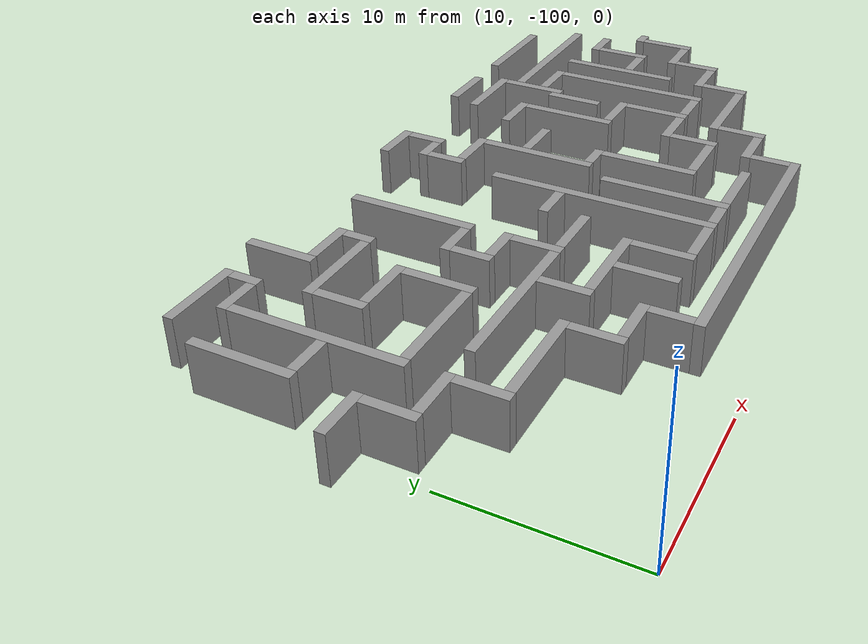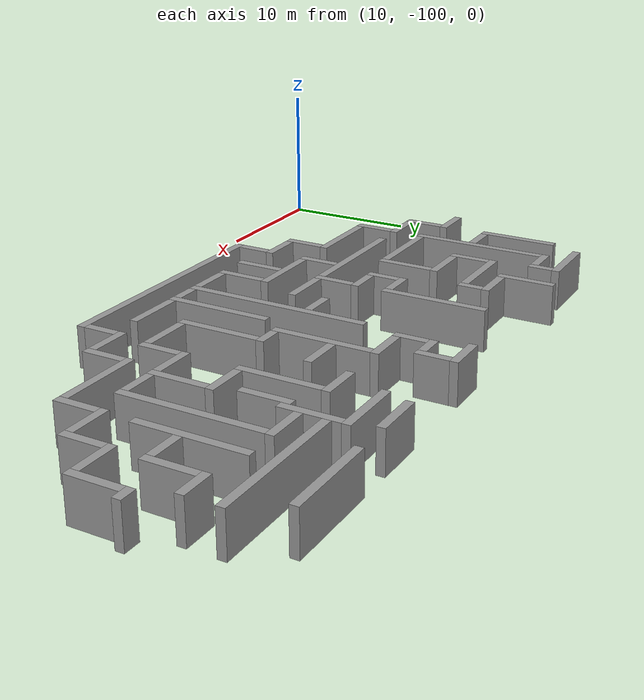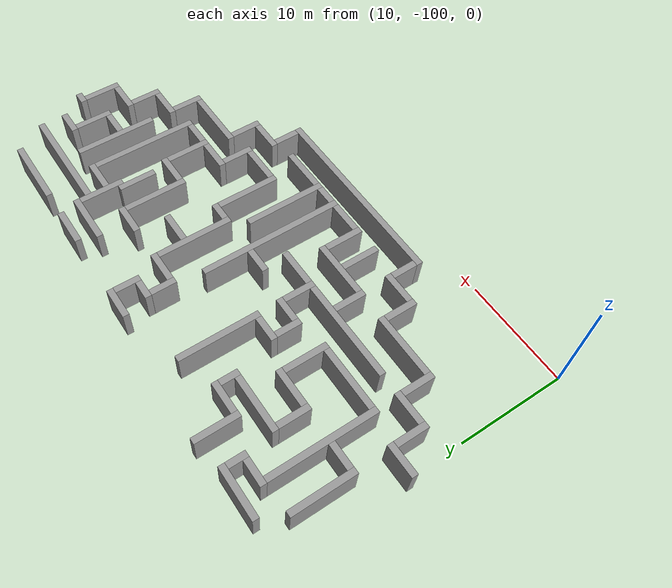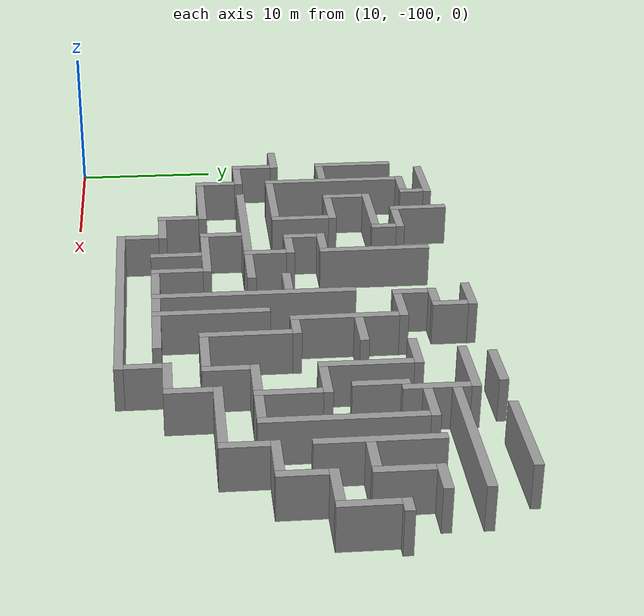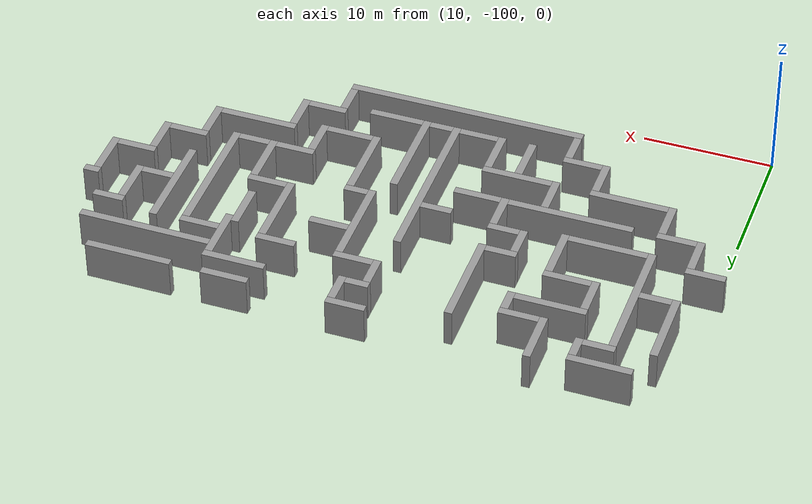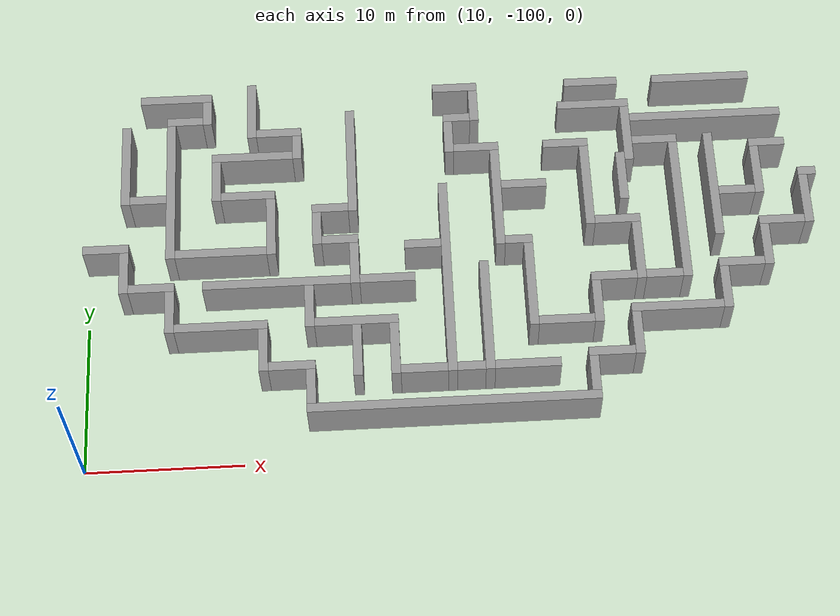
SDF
<sdf version="1.4">
 <model name="ButterflyWorld">
  <static>1</static>
  <link name="Wall_240">
   <collision name="Wall_240_Collision">
    <geometry><box><size>0.60000 4.20000 3.00000</size></box></geometry>
    <pose>20.70000 -74.70000 0 0 0 0.00000</pose>
   </collision>
   <visual name="Wall_240_Visual">
    <geometry><box><size>0.60000 4.20000 3.00000</size></box></geometry>
    <material>
     <script><uri>file://media/materials/scripts/gazebo.material</uri><name>Gazebo/Grey</name></script>
    </material>
    <pose>20.70000 -74.70000 0 0 0 0.00000</pose>
   </visual>
  </link>
  <link name="Wall_241">
   <collision name="Wall_241_Collision">
    <geometry><box><size>4.80000 0.60000 3.00000</size></box></geometry>
    <pose>15.60000 -73.50000 0 0 0 0.00000</pose>
   </collision>
   <visual name="Wall_241_Visual">
    <geometry><box><size>4.80000 0.60000 3.00000</size></box></geometry>
    <material>
     <script><uri>file://media/materials/scripts/gazebo.material</uri><name>Gazebo/Grey</name></script>
    </material>
    <pose>15.60000 -73.50000 0 0 0 0.00000</pose>
   </visual>
  </link>
  <link name="Wall_242">
   <collision name="Wall_242_Collision">
    <geometry><box><size>3.00000 0.60000 3.00000</size></box></geometry>
    <pose>34.50000 -73.50000 0 0 0 0.00000</pose>
   </collision>
   <visual name="Wall_242_Visual">
    <geometry><box><size>3.00000 0.60000 3.00000</size></box></geometry>
    <material>
     <script><uri>file://media/materials/scripts/gazebo.material</uri><name>Gazebo/Grey</name></script>
    </material>
    <pose>34.50000 -73.50000 0 0 0 0.00000</pose>
   </visual>
  </link>
  <link name="Wall_243">
   <collision name="Wall_243_Collision">
    <geometry><box><size>3.60000 0.60000 3.00000</size></box></geometry>
    <pose>43.80000 -73.50000 0 0 0 0.00000</pose>
   </collision>
   <visual name="Wall_243_Visual">
    <geometry><box><size>3.60000 0.60000 3.00000</size></box></geometry>
    <material>
     <script><uri>file://media/materials/scripts/gazebo.material</uri><name>Gazebo/Grey</name></script>
    </material>
    <pose>43.80000 -73.50000 0 0 0 0.00000</pose>
   </visual>
  </link>
  <link name="Wall_244">
   <collision name="Wall_244_Collision">
    <geometry><box><size>6.60000 0.60000 3.00000</size></box></geometry>
    <pose>51.30000 -73.50000 0 0 0 0.00000</pose>
   </collision>
   <visual name="Wall_244_Visual">
    <geometry><box><size>6.60000 0.60000 3.00000</size></box></geometry>
    <material>
     <script><uri>file://media/materials/scripts/gazebo.material</uri><name>Gazebo/Grey</name></script>
    </material>
    <pose>51.30000 -73.50000 0 0 0 0.00000</pose>
   </visual>
  </link>
  <link name="Wall_245">
   <collision name="Wall_245_Collision">
    <geometry><box><size>0.60000 1.80000 3.00000</size></box></geometry>
    <pose>17.70000 -74.70000 0 0 0 0.00000</pose>
   </collision>
   <visual name="Wall_245_Visual">
    <geometry><box><size>0.60000 1.80000 3.00000</size></box></geometry>
    <material>
     <script><uri>file://media/materials/scripts/gazebo.material</uri><name>Gazebo/Grey</name></script>
    </material>
    <pose>17.70000 -74.70000 0 0 0 0.00000</pose>
   </visual>
  </link>
  <link name="Wall_246">
   <collision name="Wall_246_Collision">
    <geometry><box><size>0.60000 2.40000 3.00000</size></box></geometry>
    <pose>35.70000 -75.00000 0 0 0 0.00000</pose>
   </collision>
   <visual name="Wall_246_Visual">
    <geometry><box><size>0.60000 2.40000 3.00000</size></box></geometry>
    <material>
     <script><uri>file://media/materials/scripts/gazebo.material</uri><name>Gazebo/Grey</name></script>
    </material>
    <pose>35.70000 -75.00000 0 0 0 0.00000</pose>
   </visual>
  </link>
  <link name="Wall_247">
   <collision name="Wall_247_Collision">
    <geometry><box><size>2.40000 0.60000 3.00000</size></box></geometry>
    <pose>16.20000 -75.30000 0 0 0 0.00000</pose>
   </collision>
   <visual name="Wall_247_Visual">
    <geometry><box><size>2.40000 0.60000 3.00000</size></box></geometry>
    <material>
     <script><uri>file://media/materials/scripts/gazebo.material</uri><name>Gazebo/Grey</name></script>
    </material>
    <pose>16.20000 -75.30000 0 0 0 0.00000</pose>
   </visual>
  </link>
  <link name="Wall_248">
   <collision name="Wall_248_Collision">
    <geometry><box><size>0.60000 7.80000 3.00000</size></box></geometry>
    <pose>27.30000 -78.90000 0 0 0 0.00000</pose>
   </collision>
   <visual name="Wall_248_Visual">
    <geometry><box><size>0.60000 7.80000 3.00000</size></box></geometry>
    <material>
     <script><uri>file://media/materials/scripts/gazebo.material</uri><name>Gazebo/Grey</name></script>
    </material>
    <pose>27.30000 -78.90000 0 0 0 0.00000</pose>
   </visual>
  </link>
  <link name="Wall_249">
   <collision name="Wall_249_Collision">
    <geometry><box><size>4.80000 0.60000 3.00000</size></box></geometry>
    <pose>43.80000 -75.30000 0 0 0 0.00000</pose>
   </collision>
   <visual name="Wall_249_Visual">
    <geometry><box><size>4.80000 0.60000 3.00000</size></box></geometry>
    <material>
     <script><uri>file://media/materials/scripts/gazebo.material</uri><name>Gazebo/Grey</name></script>
    </material>
    <pose>43.80000 -75.30000 0 0 0 0.00000</pose>
   </visual>
  </link>
  <link name="Wall_250">
   <collision name="Wall_250_Collision">
    <geometry><box><size>0.60000 6.00000 3.00000</size></box></geometry>
    <pose>12.30000 -78.60000 0 0 0 0.00000</pose>
   </collision>
   <visual name="Wall_250_Visual">
    <geometry><box><size>0.60000 6.00000 3.00000</size></box></geometry>
    <material>
     <script><uri>file://media/materials/scripts/gazebo.material</uri><name>Gazebo/Grey</name></script>
    </material>
    <pose>12.30000 -78.60000 0 0 0 0.00000</pose>
   </visual>
  </link>
  <link name="Wall_251">
   <collision name="Wall_251_Collision">
    <geometry><box><size>0.60000 10.20000 3.00000</size></box></geometry>
    <pose>15.30000 -80.70000 0 0 0 0.00000</pose>
   </collision>
   <visual name="Wall_251_Visual">
    <geometry><box><size>0.60000 10.20000 3.00000</size></box></geometry>
    <material>
     <script><uri>file://media/materials/scripts/gazebo.material</uri><name>Gazebo/Grey</name></script>
    </material>
    <pose>15.30000 -80.70000 0 0 0 0.00000</pose>
   </visual>
  </link>
  <link name="Wall_252">
   <collision name="Wall_252_Collision">
    <geometry><box><size>1.80000 0.60000 3.00000</size></box></geometry>
    <pose>34.50000 -75.90000 0 0 0 0.00000</pose>
   </collision>
   <visual name="Wall_252_Visual">
    <geometry><box><size>1.80000 0.60000 3.00000</size></box></geometry>
    <material>
     <script><uri>file://media/materials/scripts/gazebo.material</uri><name>Gazebo/Grey</name></script>
    </material>
    <pose>34.50000 -75.90000 0 0 0 0.00000</pose>
   </visual>
  </link>
  <link name="Wall_253">
   <collision name="Wall_253_Collision">
    <geometry><box><size>0.60000 4.20000 3.00000</size></box></geometry>
    <pose>45.90000 -77.70000 0 0 0 0.00000</pose>
   </collision>
   <visual name="Wall_253_Visual">
    <geometry><box><size>0.60000 4.20000 3.00000</size></box></geometry>
    <material>
     <script><uri>file://media/materials/scripts/gazebo.material</uri><name>Gazebo/Grey</name></script>
    </material>
    <pose>45.90000 -77.70000 0 0 0 0.00000</pose>
   </visual>
  </link>
  <link name="Wall_254">
   <collision name="Wall_254_Collision">
    <geometry><box><size>3.00000 0.60000 3.00000</size></box></geometry>
    <pose>22.50000 -76.50000 0 0 0 0.00000</pose>
   </collision>
   <visual name="Wall_254_Visual">
    <geometry><box><size>3.00000 0.60000 3.00000</size></box></geometry>
    <material>
     <script><uri>file://media/materials/scripts/gazebo.material</uri><name>Gazebo/Grey</name></script>
    </material>
    <pose>22.50000 -76.50000 0 0 0 0.00000</pose>
   </visual>
  </link>
  <link name="Wall_255">
   <collision name="Wall_255_Collision">
    <geometry><box><size>0.60000 2.40000 3.00000</size></box></geometry>
    <pose>33.90000 -77.40000 0 0 0 0.00000</pose>
   </collision>
   <visual name="Wall_255_Visual">
    <geometry><box><size>0.60000 2.40000 3.00000</size></box></geometry>
    <material>
     <script><uri>file://media/materials/scripts/gazebo.material</uri><name>Gazebo/Grey</name></script>
    </material>
    <pose>33.90000 -77.40000 0 0 0 0.00000</pose>
   </visual>
  </link>
  <link name="Wall_256">
   <collision name="Wall_256_Collision">
    <geometry><box><size>10.20000 0.60000 3.00000</size></box></geometry>
    <pose>51.30000 -76.50000 0 0 0 0.00000</pose>
   </collision>
   <visual name="Wall_256_Visual">
    <geometry><box><size>10.20000 0.60000 3.00000</size></box></geometry>
    <material>
     <script><uri>file://media/materials/scripts/gazebo.material</uri><name>Gazebo/Grey</name></script>
    </material>
    <pose>51.30000 -76.50000 0 0 0 0.00000</pose>
   </visual>
  </link>
  <link name="Wall_257">
   <collision name="Wall_257_Collision">
    <geometry><box><size>0.60000 1.80000 3.00000</size></box></geometry>
    <pose>23.70000 -77.70000 0 0 0 0.00000</pose>
   </collision>
   <visual name="Wall_257_Visual">
    <geometry><box><size>0.60000 1.80000 3.00000</size></box></geometry>
    <material>
     <script><uri>file://media/materials/scripts/gazebo.material</uri><name>Gazebo/Grey</name></script>
    </material>
    <pose>23.70000 -77.70000 0 0 0 0.00000</pose>
   </visual>
  </link>
  <link name="Wall_258">
   <collision name="Wall_258_Collision">
    <geometry><box><size>5.40000 0.60000 3.00000</size></box></geometry>
    <pose>20.70000 -78.30000 0 0 0 0.00000</pose>
   </collision>
   <visual name="Wall_258_Visual">
    <geometry><box><size>5.40000 0.60000 3.00000</size></box></geometry>
    <material>
     <script><uri>file://media/materials/scripts/gazebo.material</uri><name>Gazebo/Grey</name></script>
    </material>
    <pose>20.70000 -78.30000 0 0 0 0.00000</pose>
   </visual>
  </link>
  <link name="Wall_259">
   <collision name="Wall_259_Collision">
    <geometry><box><size>3.00000 0.60000 3.00000</size></box></geometry>
    <pose>35.70000 -78.30000 0 0 0 0.00000</pose>
   </collision>
   <visual name="Wall_259_Visual">
    <geometry><box><size>3.00000 0.60000 3.00000</size></box></geometry>
    <material>
     <script><uri>file://media/materials/scripts/gazebo.material</uri><name>Gazebo/Grey</name></script>
    </material>
    <pose>35.70000 -78.30000 0 0 0 0.00000</pose>
   </visual>
  </link>
  <link name="Wall_260">
   <collision name="Wall_260_Collision">
    <geometry><box><size>3.00000 0.60000 3.00000</size></box></geometry>
    <pose>41.70000 -78.30000 0 0 0 0.00000</pose>
   </collision>
   <visual name="Wall_260_Visual">
    <geometry><box><size>3.00000 0.60000 3.00000</size></box></geometry>
    <material>
     <script><uri>file://media/materials/scripts/gazebo.material</uri><name>Gazebo/Grey</name></script>
    </material>
    <pose>41.70000 -78.30000 0 0 0 0.00000</pose>
   </visual>
  </link>
  <link name="Wall_261">
   <collision name="Wall_261_Collision">
    <geometry><box><size>3.00000 0.60000 3.00000</size></box></geometry>
    <pose>47.70000 -78.30000 0 0 0 0.00000</pose>
   </collision>
   <visual name="Wall_261_Visual">
    <geometry><box><size>3.00000 0.60000 3.00000</size></box></geometry>
    <material>
     <script><uri>file://media/materials/scripts/gazebo.material</uri><name>Gazebo/Grey</name></script>
    </material>
    <pose>47.70000 -78.30000 0 0 0 0.00000</pose>
   </visual>
  </link>
  <link name="Wall_262">
   <collision name="Wall_262_Collision">
    <geometry><box><size>0.60000 7.80000 3.00000</size></box></geometry>
    <pose>51.30000 -81.90000 0 0 0 0.00000</pose>
   </collision>
   <visual name="Wall_262_Visual">
    <geometry><box><size>0.60000 7.80000 3.00000</size></box></geometry>
    <material>
     <script><uri>file://media/materials/scripts/gazebo.material</uri><name>Gazebo/Grey</name></script>
    </material>
    <pose>51.30000 -81.90000 0 0 0 0.00000</pose>
   </visual>
  </link>
  <link name="Wall_263">
   <collision name="Wall_263_Collision">
    <geometry><box><size>0.60000 3.00000 3.00000</size></box></geometry>
    <pose>18.30000 -80.10000 0 0 0 0.00000</pose>
   </collision>
   <visual name="Wall_263_Visual">
    <geometry><box><size>0.60000 3.00000 3.00000</size></box></geometry>
    <material>
     <script><uri>file://media/materials/scripts/gazebo.material</uri><name>Gazebo/Grey</name></script>
    </material>
    <pose>18.30000 -80.10000 0 0 0 0.00000</pose>
   </visual>
  </link>
  <link name="Wall_264">
   <collision name="Wall_264_Collision">
    <geometry><box><size>0.60000 7.20000 3.00000</size></box></geometry>
    <pose>36.90000 -82.20000 0 0 0 0.00000</pose>
   </collision>
   <visual name="Wall_264_Visual">
    <geometry><box><size>0.60000 7.20000 3.00000</size></box></geometry>
    <material>
     <script><uri>file://media/materials/scripts/gazebo.material</uri><name>Gazebo/Grey</name></script>
    </material>
    <pose>36.90000 -82.20000 0 0 0 0.00000</pose>
   </visual>
  </link>
  <link name="Wall_265">
   <collision name="Wall_265_Collision">
    <geometry><box><size>0.60000 6.00000 3.00000</size></box></geometry>
    <pose>42.90000 -81.60000 0 0 0 0.00000</pose>
   </collision>
   <visual name="Wall_265_Visual">
    <geometry><box><size>0.60000 6.00000 3.00000</size></box></geometry>
    <material>
     <script><uri>file://media/materials/scripts/gazebo.material</uri><name>Gazebo/Grey</name></script>
    </material>
    <pose>42.90000 -81.60000 0 0 0 0.00000</pose>
   </visual>
  </link>
  <link name="Wall_266">
   <collision name="Wall_266_Collision">
    <geometry><box><size>0.60000 10.20000 3.00000</size></box></geometry>
    <pose>48.90000 -83.70000 0 0 0 0.00000</pose>
   </collision>
   <visual name="Wall_266_Visual">
    <geometry><box><size>0.60000 10.20000 3.00000</size></box></geometry>
    <material>
     <script><uri>file://media/materials/scripts/gazebo.material</uri><name>Gazebo/Grey</name></script>
    </material>
    <pose>48.90000 -83.70000 0 0 0 0.00000</pose>
   </visual>
  </link>
  <link name="Wall_267">
   <collision name="Wall_267_Collision">
    <geometry><box><size>2.40000 0.60000 3.00000</size></box></geometry>
    <pose>55.20000 -78.90000 0 0 0 0.00000</pose>
   </collision>
   <visual name="Wall_267_Visual">
    <geometry><box><size>2.40000 0.60000 3.00000</size></box></geometry>
    <material>
     <script><uri>file://media/materials/scripts/gazebo.material</uri><name>Gazebo/Grey</name></script>
    </material>
    <pose>55.20000 -78.90000 0 0 0 0.00000</pose>
   </visual>
  </link>
  <link name="Wall_268">
   <collision name="Wall_268_Collision">
    <geometry><box><size>0.60000 3.60000 3.00000</size></box></geometry>
    <pose>45.30000 -81.00000 0 0 0 0.00000</pose>
   </collision>
   <visual name="Wall_268_Visual">
    <geometry><box><size>0.60000 3.60000 3.00000</size></box></geometry>
    <material>
     <script><uri>file://media/materials/scripts/gazebo.material</uri><name>Gazebo/Grey</name></script>
    </material>
    <pose>45.30000 -81.00000 0 0 0 0.00000</pose>
   </visual>
  </link>
  <link name="Wall_269">
   <collision name="Wall_269_Collision">
    <geometry><box><size>0.60000 3.60000 3.00000</size></box></geometry>
    <pose>54.30000 -81.00000 0 0 0 0.00000</pose>
   </collision>
   <visual name="Wall_269_Visual">
    <geometry><box><size>0.60000 3.60000 3.00000</size></box></geometry>
    <material>
     <script><uri>file://media/materials/scripts/gazebo.material</uri><name>Gazebo/Grey</name></script>
    </material>
    <pose>54.30000 -81.00000 0 0 0 0.00000</pose>
   </visual>
  </link>
  <link name="Wall_270">
   <collision name="Wall_270_Collision">
    <geometry><box><size>2.40000 0.60000 3.00000</size></box></geometry>
    <pose>13.80000 -81.30000 0 0 0 0.00000</pose>
   </collision>
   <visual name="Wall_270_Visual">
    <geometry><box><size>2.40000 0.60000 3.00000</size></box></geometry>
    <material>
     <script><uri>file://media/materials/scripts/gazebo.material</uri><name>Gazebo/Grey</name></script>
    </material>
    <pose>13.80000 -81.30000 0 0 0 0.00000</pose>
   </visual>
  </link>
  <link name="Wall_271">
   <collision name="Wall_271_Collision">
    <geometry><box><size>3.60000 0.60000 3.00000</size></box></geometry>
    <pose>20.40000 -81.30000 0 0 0 0.00000</pose>
   </collision>
   <visual name="Wall_271_Visual">
    <geometry><box><size>3.60000 0.60000 3.00000</size></box></geometry>
    <material>
     <script><uri>file://media/materials/scripts/gazebo.material</uri><name>Gazebo/Grey</name></script>
    </material>
    <pose>20.40000 -81.30000 0 0 0 0.00000</pose>
   </visual>
  </link>
  <link name="Wall_272">
   <collision name="Wall_272_Collision">
    <geometry><box><size>0.60000 13.80000 3.00000</size></box></geometry>
    <pose>33.30000 -87.90000 0 0 0 0.00000</pose>
   </collision>
   <visual name="Wall_272_Visual">
    <geometry><box><size>0.60000 13.80000 3.00000</size></box></geometry>
    <material>
     <script><uri>file://media/materials/scripts/gazebo.material</uri><name>Gazebo/Grey</name></script>
    </material>
    <pose>33.30000 -87.90000 0 0 0 0.00000</pose>
   </visual>
  </link>
  <link name="Wall_273">
   <collision name="Wall_273_Collision">
    <geometry><box><size>3.00000 0.60000 3.00000</size></box></geometry>
    <pose>38.70000 -81.30000 0 0 0 0.00000</pose>
   </collision>
   <visual name="Wall_273_Visual">
    <geometry><box><size>3.00000 0.60000 3.00000</size></box></geometry>
    <material>
     <script><uri>file://media/materials/scripts/gazebo.material</uri><name>Gazebo/Grey</name></script>
    </material>
    <pose>38.70000 -81.30000 0 0 0 0.00000</pose>
   </visual>
  </link>
  <link name="Wall_274">
   <collision name="Wall_274_Collision">
    <geometry><box><size>1.20000 0.60000 3.00000</size></box></geometry>
    <pose>57.60000 -81.30000 0 0 0 0.00000</pose>
   </collision>
   <visual name="Wall_274_Visual">
    <geometry><box><size>1.20000 0.60000 3.00000</size></box></geometry>
    <material>
     <script><uri>file://media/materials/scripts/gazebo.material</uri><name>Gazebo/Grey</name></script>
    </material>
    <pose>57.60000 -81.30000 0 0 0 0.00000</pose>
   </visual>
  </link>
  <link name="Wall_275">
   <collision name="Wall_275_Collision">
    <geometry><box><size>0.60000 4.20000 3.00000</size></box></geometry>
    <pose>21.90000 -83.70000 0 0 0 0.00000</pose>
   </collision>
   <visual name="Wall_275_Visual">
    <geometry><box><size>0.60000 4.20000 3.00000</size></box></geometry>
    <material>
     <script><uri>file://media/materials/scripts/gazebo.material</uri><name>Gazebo/Grey</name></script>
    </material>
    <pose>21.90000 -83.70000 0 0 0 0.00000</pose>
   </visual>
  </link>
  <link name="Wall_276">
   <collision name="Wall_276_Collision">
    <geometry><box><size>0.60000 3.60000 3.00000</size></box></geometry>
    <pose>57.30000 -83.40000 0 0 0 0.00000</pose>
   </collision>
   <visual name="Wall_276_Visual">
    <geometry><box><size>0.60000 3.60000 3.00000</size></box></geometry>
    <material>
     <script><uri>file://media/materials/scripts/gazebo.material</uri><name>Gazebo/Grey</name></script>
    </material>
    <pose>57.30000 -83.40000 0 0 0 0.00000</pose>
   </visual>
  </link>
  <link name="Wall_277">
   <collision name="Wall_277_Collision">
    <geometry><box><size>2.40000 0.60000 3.00000</size></box></geometry>
    <pose>25.80000 -82.50000 0 0 0 0.00000</pose>
   </collision>
   <visual name="Wall_277_Visual">
    <geometry><box><size>2.40000 0.60000 3.00000</size></box></geometry>
    <material>
     <script><uri>file://media/materials/scripts/gazebo.material</uri><name>Gazebo/Grey</name></script>
    </material>
    <pose>25.80000 -82.50000 0 0 0 0.00000</pose>
   </visual>
  </link>
  <link name="Wall_278">
   <collision name="Wall_278_Collision">
    <geometry><box><size>2.40000 0.60000 3.00000</size></box></geometry>
    <pose>52.80000 -82.50000 0 0 0 0.00000</pose>
   </collision>
   <visual name="Wall_278_Visual">
    <geometry><box><size>2.40000 0.60000 3.00000</size></box></geometry>
    <material>
     <script><uri>file://media/materials/scripts/gazebo.material</uri><name>Gazebo/Grey</name></script>
    </material>
    <pose>52.80000 -82.50000 0 0 0 0.00000</pose>
   </visual>
  </link>
  <link name="Wall_279">
   <collision name="Wall_279_Collision">
    <geometry><box><size>0.60000 2.40000 3.00000</size></box></geometry>
    <pose>24.90000 -84.00000 0 0 0 0.00000</pose>
   </collision>
   <visual name="Wall_279_Visual">
    <geometry><box><size>0.60000 2.40000 3.00000</size></box></geometry>
    <material>
     <script><uri>file://media/materials/scripts/gazebo.material</uri><name>Gazebo/Grey</name></script>
    </material>
    <pose>24.90000 -84.00000 0 0 0 0.00000</pose>
   </visual>
  </link>
  <link name="Wall_280">
   <collision name="Wall_280_Collision">
    <geometry><box><size>3.00000 0.60000 3.00000</size></box></geometry>
    <pose>44.70000 -84.30000 0 0 0 0.00000</pose>
   </collision>
   <visual name="Wall_280_Visual">
    <geometry><box><size>3.00000 0.60000 3.00000</size></box></geometry>
    <material>
     <script><uri>file://media/materials/scripts/gazebo.material</uri><name>Gazebo/Grey</name></script>
    </material>
    <pose>44.70000 -84.30000 0 0 0 0.00000</pose>
   </visual>
  </link>
  <link name="Wall_281">
   <collision name="Wall_281_Collision">
    <geometry><box><size>3.00000 0.60000 3.00000</size></box></geometry>
    <pose>11.10000 -84.90000 0 0 0 0.00000</pose>
   </collision>
   <visual name="Wall_281_Visual">
    <geometry><box><size>3.00000 0.60000 3.00000</size></box></geometry>
    <material>
     <script><uri>file://media/materials/scripts/gazebo.material</uri><name>Gazebo/Grey</name></script>
    </material>
    <pose>11.10000 -84.90000 0 0 0 0.00000</pose>
   </visual>
  </link>
  <link name="Wall_282">
   <collision name="Wall_282_Collision">
    <geometry><box><size>2.40000 0.60000 3.00000</size></box></geometry>
    <pose>26.40000 -84.90000 0 0 0 0.00000</pose>
   </collision>
   <visual name="Wall_282_Visual">
    <geometry><box><size>2.40000 0.60000 3.00000</size></box></geometry>
    <material>
     <script><uri>file://media/materials/scripts/gazebo.material</uri><name>Gazebo/Grey</name></script>
    </material>
    <pose>26.40000 -84.90000 0 0 0 0.00000</pose>
   </visual>
  </link>
  <link name="Wall_283">
   <collision name="Wall_283_Collision">
    <geometry><box><size>0.60000 4.20000 3.00000</size></box></geometry>
    <pose>45.90000 -86.70000 0 0 0 0.00000</pose>
   </collision>
   <visual name="Wall_283_Visual">
    <geometry><box><size>0.60000 4.20000 3.00000</size></box></geometry>
    <material>
     <script><uri>file://media/materials/scripts/gazebo.material</uri><name>Gazebo/Grey</name></script>
    </material>
    <pose>45.90000 -86.70000 0 0 0 0.00000</pose>
   </visual>
  </link>
  <link name="Wall_284">
   <collision name="Wall_284_Collision">
    <geometry><box><size>3.00000 0.60000 3.00000</size></box></geometry>
    <pose>55.50000 -84.90000 0 0 0 0.00000</pose>
   </collision>
   <visual name="Wall_284_Visual">
    <geometry><box><size>3.00000 0.60000 3.00000</size></box></geometry>
    <material>
     <script><uri>file://media/materials/scripts/gazebo.material</uri><name>Gazebo/Grey</name></script>
    </material>
    <pose>55.50000 -84.90000 0 0 0 0.00000</pose>
   </visual>
  </link>
  <link name="Wall_285">
   <collision name="Wall_285_Collision">
    <geometry><box><size>0.60000 3.00000 3.00000</size></box></geometry>
    <pose>12.30000 -86.70000 0 0 0 0.00000</pose>
   </collision>
   <visual name="Wall_285_Visual">
    <geometry><box><size>0.60000 3.00000 3.00000</size></box></geometry>
    <material>
     <script><uri>file://media/materials/scripts/gazebo.material</uri><name>Gazebo/Grey</name></script>
    </material>
    <pose>12.30000 -86.70000 0 0 0 0.00000</pose>
   </visual>
  </link>
  <link name="Wall_286">
   <collision name="Wall_286_Collision">
    <geometry><box><size>6.00000 0.60000 3.00000</size></box></geometry>
    <pose>18.60000 -85.50000 0 0 0 0.00000</pose>
   </collision>
   <visual name="Wall_286_Visual">
    <geometry><box><size>6.00000 0.60000 3.00000</size></box></geometry>
    <material>
     <script><uri>file://media/materials/scripts/gazebo.material</uri><name>Gazebo/Grey</name></script>
    </material>
    <pose>18.60000 -85.50000 0 0 0 0.00000</pose>
   </visual>
  </link>
  <link name="Wall_287">
   <collision name="Wall_287_Collision">
    <geometry><box><size>0.60000 3.00000 3.00000</size></box></geometry>
    <pose>27.30000 -86.70000 0 0 0 0.00000</pose>
   </collision>
   <visual name="Wall_287_Visual">
    <geometry><box><size>0.60000 3.00000 3.00000</size></box></geometry>
    <material>
     <script><uri>file://media/materials/scripts/gazebo.material</uri><name>Gazebo/Grey</name></script>
    </material>
    <pose>27.30000 -86.70000 0 0 0 0.00000</pose>
   </visual>
  </link>
  <link name="Wall_288">
   <collision name="Wall_288_Collision">
    <geometry><box><size>2.40000 0.60000 3.00000</size></box></geometry>
    <pose>31.80000 -85.50000 0 0 0 0.00000</pose>
   </collision>
   <visual name="Wall_288_Visual">
    <geometry><box><size>2.40000 0.60000 3.00000</size></box></geometry>
    <material>
     <script><uri>file://media/materials/scripts/gazebo.material</uri><name>Gazebo/Grey</name></script>
    </material>
    <pose>31.80000 -85.50000 0 0 0 0.00000</pose>
   </visual>
  </link>
  <link name="Wall_289">
   <collision name="Wall_289_Collision">
    <geometry><box><size>1.80000 0.60000 3.00000</size></box></geometry>
    <pose>38.10000 -85.50000 0 0 0 0.00000</pose>
   </collision>
   <visual name="Wall_289_Visual">
    <geometry><box><size>1.80000 0.60000 3.00000</size></box></geometry>
    <material>
     <script><uri>file://media/materials/scripts/gazebo.material</uri><name>Gazebo/Grey</name></script>
    </material>
    <pose>38.10000 -85.50000 0 0 0 0.00000</pose>
   </visual>
  </link>
  <link name="Wall_290">
   <collision name="Wall_290_Collision">
    <geometry><box><size>0.60000 3.00000 3.00000</size></box></geometry>
    <pose>54.30000 -86.70000 0 0 0 0.00000</pose>
   </collision>
   <visual name="Wall_290_Visual">
    <geometry><box><size>0.60000 3.00000 3.00000</size></box></geometry>
    <material>
     <script><uri>file://media/materials/scripts/gazebo.material</uri><name>Gazebo/Grey</name></script>
    </material>
    <pose>54.30000 -86.70000 0 0 0 0.00000</pose>
   </visual>
  </link>
  <link name="Wall_291">
   <collision name="Wall_291_Collision">
    <geometry><box><size>0.60000 6.00000 3.00000</size></box></geometry>
    <pose>38.70000 -88.80000 0 0 0 0.00000</pose>
   </collision>
   <visual name="Wall_291_Visual">
    <geometry><box><size>0.60000 6.00000 3.00000</size></box></geometry>
    <material>
     <script><uri>file://media/materials/scripts/gazebo.material</uri><name>Gazebo/Grey</name></script>
    </material>
    <pose>38.70000 -88.80000 0 0 0 0.00000</pose>
   </visual>
  </link>
  <link name="Wall_292">
   <collision name="Wall_292_Collision">
    <geometry><box><size>0.60000 7.80000 3.00000</size></box></geometry>
    <pose>35.70000 -90.90000 0 0 0 0.00000</pose>
   </collision>
   <visual name="Wall_292_Visual">
    <geometry><box><size>0.60000 7.80000 3.00000</size></box></geometry>
    <material>
     <script><uri>file://media/materials/scripts/gazebo.material</uri><name>Gazebo/Grey</name></script>
    </material>
    <pose>35.70000 -90.90000 0 0 0 0.00000</pose>
   </visual>
  </link>
  <link name="Wall_293">
   <collision name="Wall_293_Collision">
    <geometry><box><size>3.00000 0.60000 3.00000</size></box></geometry>
    <pose>14.10000 -87.90000 0 0 0 0.00000</pose>
   </collision>
   <visual name="Wall_293_Visual">
    <geometry><box><size>3.00000 0.60000 3.00000</size></box></geometry>
    <material>
     <script><uri>file://media/materials/scripts/gazebo.material</uri><name>Gazebo/Grey</name></script>
    </material>
    <pose>14.10000 -87.90000 0 0 0 0.00000</pose>
   </visual>
  </link>
  <link name="Wall_294">
   <collision name="Wall_294_Collision">
    <geometry><box><size>9.60000 0.60000 3.00000</size></box></geometry>
    <pose>22.20000 -87.90000 0 0 0 0.00000</pose>
   </collision>
   <visual name="Wall_294_Visual">
    <geometry><box><size>9.60000 0.60000 3.00000</size></box></geometry>
    <material>
     <script><uri>file://media/materials/scripts/gazebo.material</uri><name>Gazebo/Grey</name></script>
    </material>
    <pose>22.20000 -87.90000 0 0 0 0.00000</pose>
   </visual>
  </link>
  <link name="Wall_295">
   <collision name="Wall_295_Collision">
    <geometry><box><size>3.60000 0.60000 3.00000</size></box></geometry>
    <pose>29.40000 -87.90000 0 0 0 0.00000</pose>
   </collision>
   <visual name="Wall_295_Visual">
    <geometry><box><size>3.60000 0.60000 3.00000</size></box></geometry>
    <material>
     <script><uri>file://media/materials/scripts/gazebo.material</uri><name>Gazebo/Grey</name></script>
    </material>
    <pose>29.40000 -87.90000 0 0 0 0.00000</pose>
   </visual>
  </link>
  <link name="Wall_296">
   <collision name="Wall_296_Collision">
    <geometry><box><size>3.00000 0.60000 3.00000</size></box></geometry>
    <pose>52.50000 -87.90000 0 0 0 0.00000</pose>
   </collision>
   <visual name="Wall_296_Visual">
    <geometry><box><size>3.00000 0.60000 3.00000</size></box></geometry>
    <material>
     <script><uri>file://media/materials/scripts/gazebo.material</uri><name>Gazebo/Grey</name></script>
    </material>
    <pose>52.50000 -87.90000 0 0 0 0.00000</pose>
   </visual>
  </link>
  <link name="Wall_297">
   <collision name="Wall_297_Collision">
    <geometry><box><size>0.60000 3.00000 3.00000</size></box></geometry>
    <pose>15.30000 -89.70000 0 0 0 0.00000</pose>
   </collision>
   <visual name="Wall_297_Visual">
    <geometry><box><size>0.60000 3.00000 3.00000</size></box></geometry>
    <material>
     <script><uri>file://media/materials/scripts/gazebo.material</uri><name>Gazebo/Grey</name></script>
    </material>
    <pose>15.30000 -89.70000 0 0 0 0.00000</pose>
   </visual>
  </link>
  <link name="Wall_298">
   <collision name="Wall_298_Collision">
    <geometry><box><size>0.60000 3.00000 3.00000</size></box></geometry>
    <pose>24.30000 -89.70000 0 0 0 0.00000</pose>
   </collision>
   <visual name="Wall_298_Visual">
    <geometry><box><size>0.60000 3.00000 3.00000</size></box></geometry>
    <material>
     <script><uri>file://media/materials/scripts/gazebo.material</uri><name>Gazebo/Grey</name></script>
    </material>
    <pose>24.30000 -89.70000 0 0 0 0.00000</pose>
   </visual>
  </link>
  <link name="Wall_299">
   <collision name="Wall_299_Collision">
    <geometry><box><size>3.00000 0.60000 3.00000</size></box></geometry>
    <pose>44.10000 -88.50000 0 0 0 0.00000</pose>
   </collision>
   <visual name="Wall_299_Visual">
    <geometry><box><size>3.00000 0.60000 3.00000</size></box></geometry>
    <material>
     <script><uri>file://media/materials/scripts/gazebo.material</uri><name>Gazebo/Grey</name></script>
    </material>
    <pose>44.10000 -88.50000 0 0 0 0.00000</pose>
   </visual>
  </link>
  <link name="Wall_300">
   <collision name="Wall_300_Collision">
    <geometry><box><size>2.40000 0.60000 3.00000</size></box></geometry>
    <pose>47.40000 -88.50000 0 0 0 0.00000</pose>
   </collision>
   <visual name="Wall_300_Visual">
    <geometry><box><size>2.40000 0.60000 3.00000</size></box></geometry>
    <material>
     <script><uri>file://media/materials/scripts/gazebo.material</uri><name>Gazebo/Grey</name></script>
    </material>
    <pose>47.40000 -88.50000 0 0 0 0.00000</pose>
   </visual>
  </link>
  <link name="Wall_301">
   <collision name="Wall_301_Collision">
    <geometry><box><size>0.60000 3.00000 3.00000</size></box></geometry>
    <pose>51.30000 -89.70000 0 0 0 0.00000</pose>
   </collision>
   <visual name="Wall_301_Visual">
    <geometry><box><size>0.60000 3.00000 3.00000</size></box></geometry>
    <material>
     <script><uri>file://media/materials/scripts/gazebo.material</uri><name>Gazebo/Grey</name></script>
    </material>
    <pose>51.30000 -89.70000 0 0 0 0.00000</pose>
   </visual>
  </link>
  <link name="Wall_302">
   <collision name="Wall_302_Collision">
    <geometry><box><size>0.60000 3.00000 3.00000</size></box></geometry>
    <pose>42.90000 -90.30000 0 0 0 0.00000</pose>
   </collision>
   <visual name="Wall_302_Visual">
    <geometry><box><size>0.60000 3.00000 3.00000</size></box></geometry>
    <material>
     <script><uri>file://media/materials/scripts/gazebo.material</uri><name>Gazebo/Grey</name></script>
    </material>
    <pose>42.90000 -90.30000 0 0 0 0.00000</pose>
   </visual>
  </link>
  <link name="Wall_303">
   <collision name="Wall_303_Collision">
    <geometry><box><size>6.00000 0.60000 3.00000</size></box></geometry>
    <pose>18.60000 -90.90000 0 0 0 0.00000</pose>
   </collision>
   <visual name="Wall_303_Visual">
    <geometry><box><size>6.00000 0.60000 3.00000</size></box></geometry>
    <material>
     <script><uri>file://media/materials/scripts/gazebo.material</uri><name>Gazebo/Grey</name></script>
    </material>
    <pose>18.60000 -90.90000 0 0 0 0.00000</pose>
   </visual>
  </link>
  <link name="Wall_304">
   <collision name="Wall_304_Collision">
    <geometry><box><size>5.40000 0.60000 3.00000</size></box></geometry>
    <pose>27.30000 -90.90000 0 0 0 0.00000</pose>
   </collision>
   <visual name="Wall_304_Visual">
    <geometry><box><size>5.40000 0.60000 3.00000</size></box></geometry>
    <material>
     <script><uri>file://media/materials/scripts/gazebo.material</uri><name>Gazebo/Grey</name></script>
    </material>
    <pose>27.30000 -90.90000 0 0 0 0.00000</pose>
   </visual>
  </link>
  <link name="Wall_305">
   <collision name="Wall_305_Collision">
    <geometry><box><size>6.00000 0.60000 3.00000</size></box></geometry>
    <pose>48.00000 -90.90000 0 0 0 0.00000</pose>
   </collision>
   <visual name="Wall_305_Visual">
    <geometry><box><size>6.00000 0.60000 3.00000</size></box></geometry>
    <material>
     <script><uri>file://media/materials/scripts/gazebo.material</uri><name>Gazebo/Grey</name></script>
    </material>
    <pose>48.00000 -90.90000 0 0 0 0.00000</pose>
   </visual>
  </link>
  <link name="Wall_306">
   <collision name="Wall_306_Collision">
    <geometry><box><size>0.60000 3.00000 3.00000</size></box></geometry>
    <pose>21.30000 -92.70000 0 0 0 0.00000</pose>
   </collision>
   <visual name="Wall_306_Visual">
    <geometry><box><size>0.60000 3.00000 3.00000</size></box></geometry>
    <material>
     <script><uri>file://media/materials/scripts/gazebo.material</uri><name>Gazebo/Grey</name></script>
    </material>
    <pose>21.30000 -92.70000 0 0 0 0.00000</pose>
   </visual>
  </link>
  <link name="Wall_307">
   <collision name="Wall_307_Collision">
    <geometry><box><size>0.60000 3.60000 3.00000</size></box></geometry>
    <pose>27.30000 -93.00000 0 0 0 0.00000</pose>
   </collision>
   <visual name="Wall_307_Visual">
    <geometry><box><size>0.60000 3.60000 3.00000</size></box></geometry>
    <material>
     <script><uri>file://media/materials/scripts/gazebo.material</uri><name>Gazebo/Grey</name></script>
    </material>
    <pose>27.30000 -93.00000 0 0 0 0.00000</pose>
   </visual>
  </link>
  <link name="Wall_308">
   <collision name="Wall_308_Collision">
    <geometry><box><size>0.60000 3.60000 3.00000</size></box></geometry>
    <pose>29.70000 -93.00000 0 0 0 0.00000</pose>
   </collision>
   <visual name="Wall_308_Visual">
    <geometry><box><size>0.60000 3.60000 3.00000</size></box></geometry>
    <material>
     <script><uri>file://media/materials/scripts/gazebo.material</uri><name>Gazebo/Grey</name></script>
    </material>
    <pose>29.70000 -93.00000 0 0 0 0.00000</pose>
   </visual>
  </link>
  <link name="Wall_309">
   <collision name="Wall_309_Collision">
    <geometry><box><size>3.60000 0.60000 3.00000</size></box></geometry>
    <pose>40.80000 -91.50000 0 0 0 0.00000</pose>
   </collision>
   <visual name="Wall_309_Visual">
    <geometry><box><size>3.60000 0.60000 3.00000</size></box></geometry>
    <material>
     <script><uri>file://media/materials/scripts/gazebo.material</uri><name>Gazebo/Grey</name></script>
    </material>
    <pose>40.80000 -91.50000 0 0 0 0.00000</pose>
   </visual>
  </link>
  <link name="Wall_310">
   <collision name="Wall_310_Collision">
    <geometry><box><size>0.60000 3.00000 3.00000</size></box></geometry>
    <pose>45.30000 -92.70000 0 0 0 0.00000</pose>
   </collision>
   <visual name="Wall_310_Visual">
    <geometry><box><size>0.60000 3.00000 3.00000</size></box></geometry>
    <material>
     <script><uri>file://media/materials/scripts/gazebo.material</uri><name>Gazebo/Grey</name></script>
    </material>
    <pose>45.30000 -92.70000 0 0 0 0.00000</pose>
   </visual>
  </link>
  <link name="Wall_311">
   <collision name="Wall_311_Collision">
    <geometry><box><size>3.00000 0.60000 3.00000</size></box></geometry>
    <pose>23.10000 -93.90000 0 0 0 0.00000</pose>
   </collision>
   <visual name="Wall_311_Visual">
    <geometry><box><size>3.00000 0.60000 3.00000</size></box></geometry>
    <material>
     <script><uri>file://media/materials/scripts/gazebo.material</uri><name>Gazebo/Grey</name></script>
    </material>
    <pose>23.10000 -93.90000 0 0 0 0.00000</pose>
   </visual>
  </link>
  <link name="Wall_312">
   <collision name="Wall_312_Collision">
    <geometry><box><size>3.00000 0.60000 3.00000</size></box></geometry>
    <pose>43.50000 -93.90000 0 0 0 0.00000</pose>
   </collision>
   <visual name="Wall_312_Visual">
    <geometry><box><size>3.00000 0.60000 3.00000</size></box></geometry>
    <material>
     <script><uri>file://media/materials/scripts/gazebo.material</uri><name>Gazebo/Grey</name></script>
    </material>
    <pose>43.50000 -93.90000 0 0 0 0.00000</pose>
   </visual>
  </link>
  <link name="Wall_313">
   <collision name="Wall_313_Collision">
    <geometry><box><size>0.60000 2.40000 3.00000</size></box></geometry>
    <pose>24.30000 -95.40000 0 0 0 0.00000</pose>
   </collision>
   <visual name="Wall_313_Visual">
    <geometry><box><size>0.60000 2.40000 3.00000</size></box></geometry>
    <material>
     <script><uri>file://media/materials/scripts/gazebo.material</uri><name>Gazebo/Grey</name></script>
    </material>
    <pose>24.30000 -95.40000 0 0 0 0.00000</pose>
   </visual>
  </link>
  <link name="Wall_314">
   <collision name="Wall_314_Collision">
    <geometry><box><size>3.00000 0.60000 3.00000</size></box></geometry>
    <pose>31.50000 -94.50000 0 0 0 0.00000</pose>
   </collision>
   <visual name="Wall_314_Visual">
    <geometry><box><size>3.00000 0.60000 3.00000</size></box></geometry>
    <material>
     <script><uri>file://media/materials/scripts/gazebo.material</uri><name>Gazebo/Grey</name></script>
    </material>
    <pose>31.50000 -94.50000 0 0 0 0.00000</pose>
   </visual>
  </link>
  <link name="Wall_315">
   <collision name="Wall_315_Collision">
    <geometry><box><size>1.80000 0.60000 3.00000</size></box></geometry>
    <pose>34.50000 -94.50000 0 0 0 0.00000</pose>
   </collision>
   <visual name="Wall_315_Visual">
    <geometry><box><size>1.80000 0.60000 3.00000</size></box></geometry>
    <material>
     <script><uri>file://media/materials/scripts/gazebo.material</uri><name>Gazebo/Grey</name></script>
    </material>
    <pose>34.50000 -94.50000 0 0 0 0.00000</pose>
   </visual>
  </link>
  <link name="Wall_316">
   <collision name="Wall_316_Collision">
    <geometry><box><size>4.20000 0.60000 3.00000</size></box></geometry>
    <pose>38.10000 -94.50000 0 0 0 0.00000</pose>
   </collision>
   <visual name="Wall_316_Visual">
    <geometry><box><size>4.20000 0.60000 3.00000</size></box></geometry>
    <material>
     <script><uri>file://media/materials/scripts/gazebo.material</uri><name>Gazebo/Grey</name></script>
    </material>
    <pose>38.10000 -94.50000 0 0 0 0.00000</pose>
   </visual>
  </link>
  <link name="Wall_317">
   <collision name="Wall_317_Collision">
    <geometry><box><size>0.60000 2.40000 3.00000</size></box></geometry>
    <pose>42.30000 -95.40000 0 0 0 0.00000</pose>
   </collision>
   <visual name="Wall_317_Visual">
    <geometry><box><size>0.60000 2.40000 3.00000</size></box></geometry>
    <material>
     <script><uri>file://media/materials/scripts/gazebo.material</uri><name>Gazebo/Grey</name></script>
    </material>
    <pose>42.30000 -95.40000 0 0 0 0.00000</pose>
   </visual>
  </link>
  <link name="Wall_318">
   <collision name="Wall_318_Collision">
    <geometry><box><size>18.60000 0.60000 3.00000</size></box></geometry>
    <pose>33.30000 -96.90000 0 0 0 0.00000</pose>
   </collision>
   <visual name="Wall_318_Visual">
    <geometry><box><size>18.60000 0.60000 3.00000</size></box></geometry>
    <material>
     <script><uri>file://media/materials/scripts/gazebo.material</uri><name>Gazebo/Grey</name></script>
    </material>
    <pose>33.30000 -96.90000 0 0 0 0.00000</pose>
   </visual>
  </link>
 </model>
</sdf>
